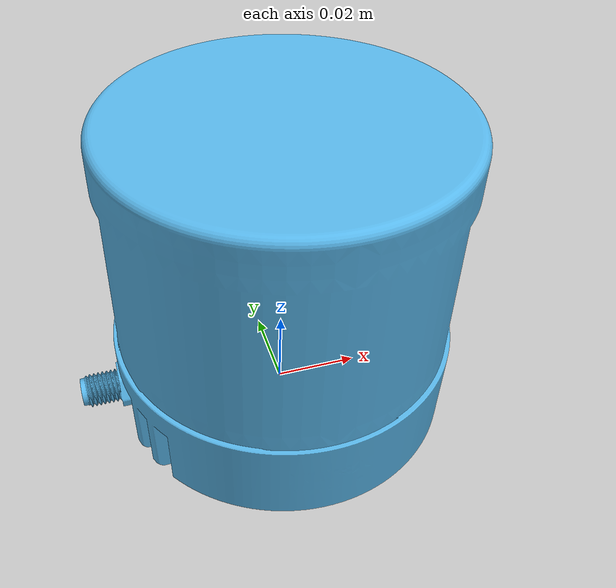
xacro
<?xml version="1.0"?>
<robot name="hesai" xmlns:xacro="http://www.ros.org/wiki/xacro">

  <xacro:arg name="prefix" default="" />
  <xacro:arg name="simulation" default="false" />
  <xacro:arg name="use_gpu" default="true" />

  <xacro:include filename="$(find hesai_description)/urdf/hesai_qt64.urdf.xacro" />

  <link name="base"/>

  <xacro:hesai_qt64 parent="base" prefix="$(arg prefix)" lidar_frame="$(arg prefix)hesai_lidar"
                    simulation="$(arg simulation)" use_gpu="$(arg use_gpu)" >
    <origin xyz="0 0 0" rpy="0 0 0" />
  </xacro:hesai_qt64>

</robot>

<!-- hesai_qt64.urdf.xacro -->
<robot name="hesai_qt64" xmlns:xacro="http://www.ros.org/wiki/xacro">

  <xacro:macro name="hesai_qt64" params="parent *origin prefix:='' name:=pandar_qt64
                                         topic_name:=/hesai/pandar
                                         simulation:=false lidar_frame:=hesai_lidar use_gpu:=true">
    <joint name="${parent}_to_${prefix}hesai" type="fixed">
      <xacro:insert_block name="origin"/>
      <parent link="${parent}" />
      <child link="${prefix}hesai_base" />
    </joint>

    <link name="${prefix}hesai_base">
      <visual>
        <origin xyz="0 0 0" rpy="0 0 0" />
        <geometry>
          <mesh filename="package://hesai_description/meshes/visual/qt64.dae" />
        </geometry>
      </visual>
      <inertial>
        <!-- TODO Still correspond to values of XT32 -->
        <origin xyz="-0.015e-3 0.0 37.494e-3" rpy="0 0 0" />
        <mass value="0.807" />
        <inertia ixx="886.81e-6" ixy="5.802e-11" ixz="-0.34e-6" iyy="898.12e-6" iyz="-0.014e-6" izz="1004.287e-6" />
      </inertial>
      <collision>
        <origin xyz="0 0 38.0e-3"/>
        <geometry>
          <cylinder radius="51.500e-3" length="76.0e-3" />
        </geometry>
      </collision>
    </link>
    <link name="${lidar_frame}"/>
    <joint name="${prefix}hesai_base_to_${lidar_frame}" type="fixed">
      <!-- See page 12 of QT64 user manual -->
      <!-- Note that the X axis points left See manual page 11 -->
      <origin xyz="0.0 0.0 50.4e-3" rpy="0.0 0.0 ${pi/2}"/>
      <parent link="${prefix}hesai_base"/>
      <child link="${lidar_frame}" />
    </joint>

    <xacro:if value="${simulation}">
      <xacro:include filename="$(find hesai_description)/urdf/gazebo.urdf.xacro"/>
      <xacro:hesai_gazebo prefix="${prefix}" lidar_frame="${lidar_frame}" topic_name="${topic_name}" min_range="0.1" max_range="20.0"
        min_horizontal_angle="-180.0" max_horizontal_angle="180.0" min_vertical_angle="-52.1" max_vertical_angle="52.1"
        hz="10" samples="600" lasers="64" collision_range="0.3" noise="0.008" use_gpu="${use_gpu}"
      />
    </xacro:if>
  </xacro:macro>

</robot>
